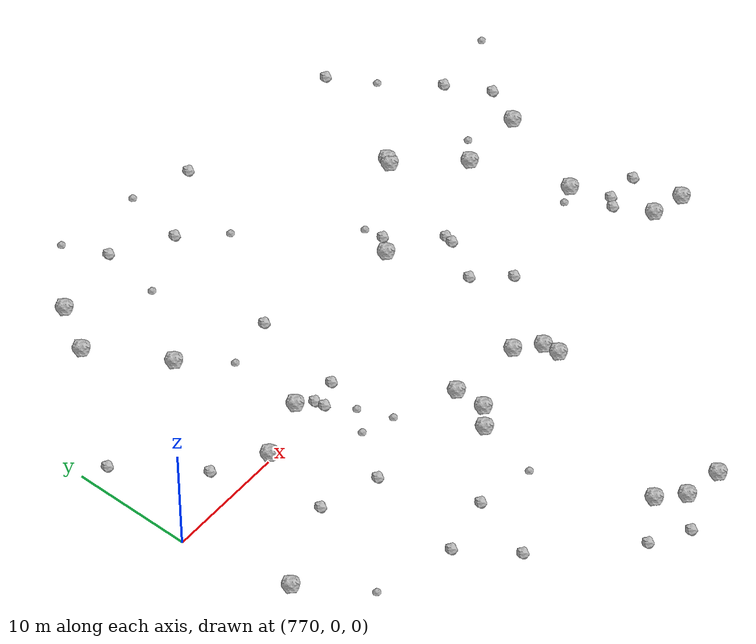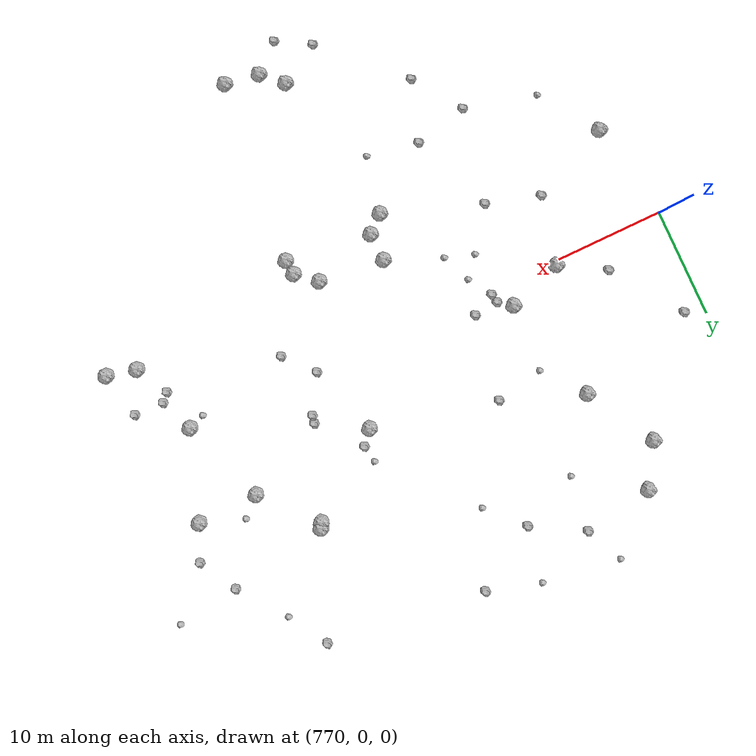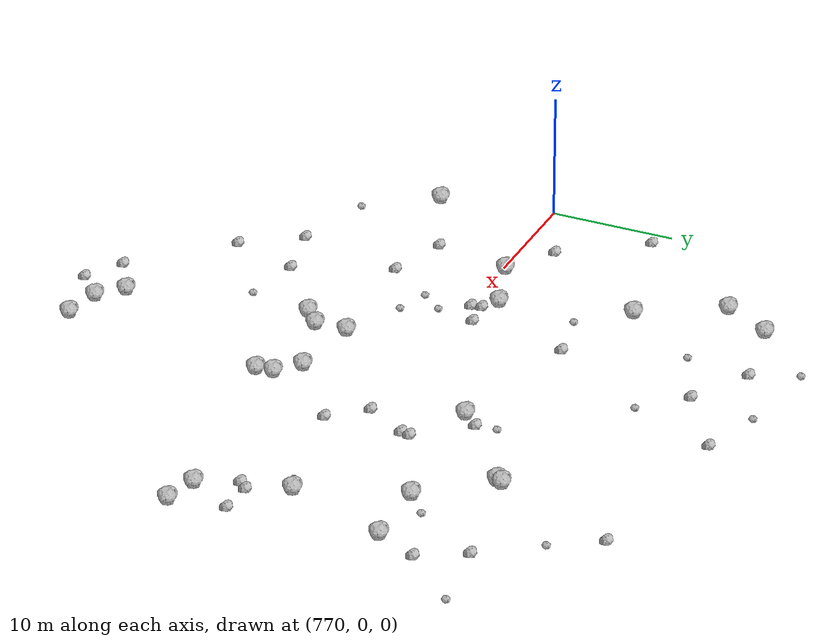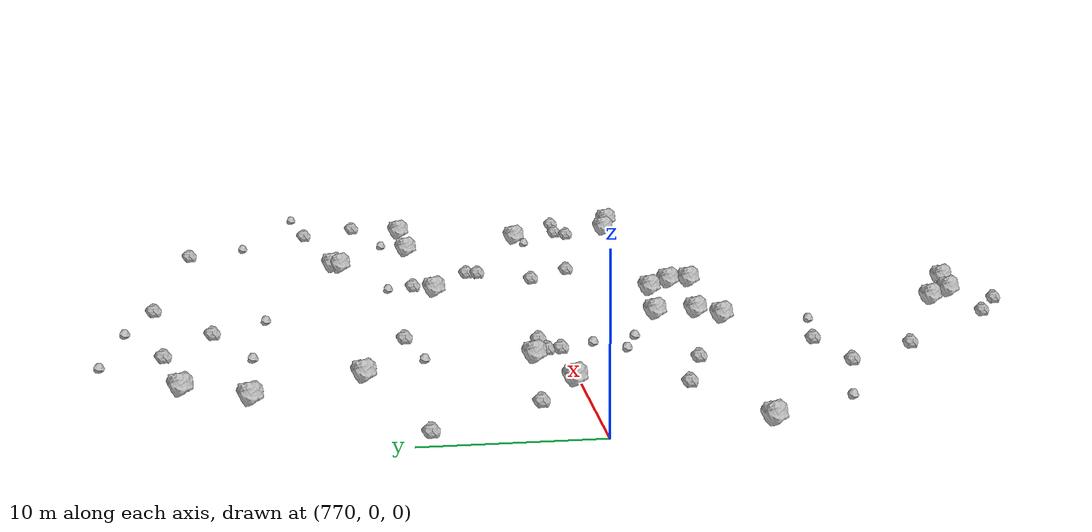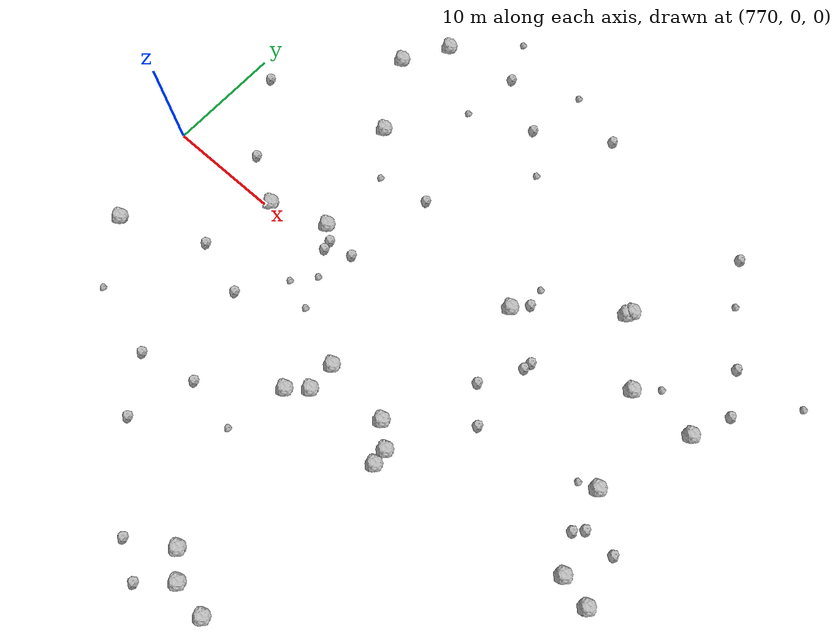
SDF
<sdf version="1.6">
 <world name="default">
  <include><uri>model://sun</uri></include>
  <model name="rock1_20_4">
   <include><uri>model://rock1</uri><pose>800.3407049680459 -7.444759703893087 0.5 0 0 0</pose></include>
  </model>
  <model name="rock1_20_5">
   <include><uri>model://rock1</uri><pose>794.3697582855712 -9.29956372597967 0.5 0 0 0</pose></include>
  </model>
  <model name="rock1_20_6">
   <include><uri>model://rock1</uri><pose>813.6630072474744 7.43321457174185 0.5 0 0 0</pose></include>
  </model>
  <model name="rock1_20_7">
   <include><uri>model://rock1</uri><pose>802.1448987721079 -9.008786224431905 0.5 0 0 0</pose></include>
  </model>
  <model name="rock1_20_8">
   <include><uri>model://rock1</uri><pose>785.5078910606471 1.9548187578022684 0.5 0 0 0</pose></include>
  </model>
  <model name="rock1_20_9">
   <include><uri>model://rock1</uri><pose>821.2524121114149 -7.915354016696753 0.5 0 0 0</pose></include>
  </model>
  <model name="rock1_20_10">
   <include><uri>model://rock1</uri><pose>819.3499573372492 7.568814123578306 0.5 0 0 0</pose></include>
  </model>
  <model name="rock1_20_11">
   <include><uri>model://rock1</uri><pose>795.4660265825607 -24.785799290277186 0.5 0 0 0</pose></include>
  </model>
  <model name="rock1_20_12">
   <include><uri>model://rock1</uri><pose>818.5140478193811 -7.268843887523101 0.5 0 0 0</pose></include>
  </model>
  <model name="rock1_20_13">
   <include><uri>model://rock1</uri><pose>801.9117179708768 6.416220344067199 0.5 0 0 0</pose></include>
  </model>
  <model name="rock1_20_14">
   <include><uri>model://rock1</uri><pose>802.2623138661072 -10.392764292887772 0.5 0 0 0</pose></include>
  </model>
  <model name="rock1_20_15">
   <include><uri>model://rock1</uri><pose>794.3110029679988 -6.725459280389224 0.5 0 0 0</pose></include>
  </model>
  <model name="rock1_20_16">
   <include><uri>model://rock1</uri><pose>800.4282747635991 -27.035629159734757 0.5 0 0 0</pose></include>
  </model>
  <model name="rock1_20_17">
   <include><uri>model://rock1</uri><pose>792.829213495724 -10.6332930584508 0.5 0 0 0</pose></include>
  </model>
  <model name="rock1_20_18">
   <include><uri>model://rock1</uri><pose>779.3485460290041 18.23160046500253 0.5 0 0 0</pose></include>
  </model>
  <model name="rock1_20_19">
   <include><uri>model://rock1</uri><pose>809.6647023728904 12.632051553303938 0.5 0 0 0</pose></include>
  </model>
  <model name="rock1_20_20">
   <include><uri>model://rock1</uri><pose>780.4939180979455 0.3064268356870201 0.5 0 0 0</pose></include>
  </model>
  <model name="rock1_20_21">
   <include><uri>model://rock1</uri><pose>816.4474211960501 -0.4870780245957498 0.5 0 0 0</pose></include>
  </model>
  <model name="rock1_20_22">
   <include><uri>model://rock1</uri><pose>771.8597132351351 -9.028354133061192 0.5 0 0 0</pose></include>
  </model>
  <model name="rock1_20_23">
   <include><uri>model://rock1</uri><pose>809.423035538666 12.18727295145721 0.5 0 0 0</pose></include>
  </model>
  <model name="rock1_20_24">
   <include><uri>model://rock1</uri><pose>797.2828987165524 -26.521264551689526 0.5 0 0 0</pose></include>
  </model>
  <model name="rock1_20_25">
   <include><uri>model://rock1</uri><pose>782.9241963105454 11.919057403305857 0.5 0 0 0</pose></include>
  </model>
  <model name="rock1_20_26">
   <include><uri>model://rock1</uri><pose>781.6683545678528 22.033035730578874 0.5 0 0 0</pose></include>
  </model>
  <model name="rock2_20_0">
   <include><uri>model://rock2</uri><pose>806.3034451921613 -2.8113890083001216 0.3 0 0 0</pose></include>
  </model>
  <model name="rock2_20_1">
   <include><uri>model://rock2</uri><pose>806.1870868535499 3.918425173339365 0.3 0 0 0</pose></include>
  </model>
  <model name="rock2_20_2">
   <include><uri>model://rock2</uri><pose>776.3576217110681 2.7367647752174094 0.3 0 0 0</pose></include>
  </model>
  <model name="rock2_20_3">
   <include><uri>model://rock2</uri><pose>817.6891144165446 -3.5617649923790644 0.3 0 0 0</pose></include>
  </model>
  <model name="rock2_20_4">
   <include><uri>model://rock2</uri><pose>804.0096112009945 -0.15931668513461972 0.3 0 0 0</pose></include>
  </model>
  <model name="rock2_20_5">
   <include><uri>model://rock2</uri><pose>788.0552690699152 23.181687371563022 0.3 0 0 0</pose></include>
  </model>
  <model name="rock2_20_6">
   <include><uri>model://rock2</uri><pose>798.7242571056235 24.135588308481516 0.3 0 0 0</pose></include>
  </model>
  <model name="rock2_20_7">
   <include><uri>model://rock2</uri><pose>802.9983424381326 7.708877427097619 0.3 0 0 0</pose></include>
  </model>
  <model name="rock2_20_8">
   <include><uri>model://rock2</uri><pose>783.8921946749889 -7.416564095185013 0.3 0 0 0</pose></include>
  </model>
  <model name="rock2_20_9">
   <include><uri>model://rock2</uri><pose>791.7551063317761 -26.969613722145233 0.3 0 0 0</pose></include>
  </model>
  <model name="rock2_20_10">
   <include><uri>model://rock2</uri><pose>778.9723218885935 -5.917100791535091 0.3 0 0 0</pose></include>
  </model>
  <model name="rock2_20_11">
   <include><uri>model://rock2</uri><pose>786.6695893517708 1.058000129524821 0.3 0 0 0</pose></include>
  </model>
  <model name="rock2_20_12">
   <include><uri>model://rock2</uri><pose>816.9796077764285 -4.293580872857007 0.3 0 0 0</pose></include>
  </model>
  <model name="rock2_20_13">
   <include><uri>model://rock2</uri><pose>820.8299407024105 10.859477352973059 0.3 0 0 0</pose></include>
  </model>
  <model name="rock2_20_14">
   <include><uri>model://rock2</uri><pose>771.8325876897918 9.046008267229041 0.3 0 0 0</pose></include>
  </model>
  <model name="rock2_20_15">
   <include><uri>model://rock2</uri><pose>785.0853975393833 -20.369623995050723 0.3 0 0 0</pose></include>
  </model>
  <model name="rock2_20_16">
   <include><uri>model://rock2</uri><pose>782.027459471732 -16.006037391690192 0.3 0 0 0</pose></include>
  </model>
  <model name="rock2_20_17">
   <include><uri>model://rock2</uri><pose>794.7774645497776 -28.71742778064149 0.3 0 0 0</pose></include>
  </model>
  <model name="rock2_20_18">
   <include><uri>model://rock2</uri><pose>813.5659139133749 22.29129477122101 0.3 0 0 0</pose></include>
  </model>
  <model name="rock2_20_19">
   <include><uri>model://rock2</uri><pose>786.9019238970933 -14.92039991028445 0.3 0 0 0</pose></include>
  </model>
  <model name="rock2_20_20">
   <include><uri>model://rock2</uri><pose>818.9241419547744 14.350948953269828 0.3 0 0 0</pose></include>
  </model>
  <model name="rock2_20_21">
   <include><uri>model://rock2</uri><pose>790.2802139185221 9.138441026421937 0.3 0 0 0</pose></include>
  </model>
  <model name="rock2_20_22">
   <include><uri>model://rock2</uri><pose>820.4406859835358 -3.6632088694390745 0.3 0 0 0</pose></include>
  </model>
  <model name="rock2_20_23">
   <include><uri>model://rock2</uri><pose>786.8221742997737 0.22638912942913336 0.3 0 0 0</pose></include>
  </model>
  <model name="rock2_20_24">
   <include><uri>model://rock2</uri><pose>792.7885547661159 20.44980129141726 0.3 0 0 0</pose></include>
  </model>
  <model name="rock2_20_25">
   <include><uri>model://rock2</uri><pose>788.9359243289315 1.2901856727941095 0.3 0 0 0</pose></include>
  </model>
  <model name="rock2_20_26">
   <include><uri>model://rock2</uri><pose>806.0398107206528 3.198784429063707 0.3 0 0 0</pose></include>
  </model>
  <model name="rock3_20_0">
   <include><uri>model://rock3</uri><pose>775.416015169335 -14.289499299345174 0.2 0 0 0</pose></include>
  </model>
  <model name="rock3_20_1">
   <include><uri>model://rock3</uri><pose>815.4086103243366 9.03039284023005 0.2 0 0 0</pose></include>
  </model>
  <model name="rock3_20_2">
   <include><uri>model://rock3</uri><pose>789.2429686266357 -4.601668428278675 0.2 0 0 0</pose></include>
  </model>
  <model name="rock3_20_3">
   <include><uri>model://rock3</uri><pose>802.7576678039217 9.302102240999965 0.2 0 0 0</pose></include>
  </model>
  <model name="rock3_20_4">
   <include><uri>model://rock3</uri><pose>824.794678045507 15.109856860700397 0.2 0 0 0</pose></include>
  </model>
  <model name="rock3_20_5">
   <include><uri>model://rock3</uri><pose>788.1357237583986 -1.9163190938445887 0.2 0 0 0</pose></include>
  </model>
  <model name="rock3_20_6">
   <include><uri>model://rock3</uri><pose>815.7050034701822 18.64542233021345 0.2 0 0 0</pose></include>
  </model>
  <model name="rock3_20_7">
   <include><uri>model://rock3</uri><pose>795.7843617799858 17.22544456335843 0.2 0 0 0</pose></include>
  </model>
  <model name="rock3_20_8">
   <include><uri>model://rock3</uri><pose>793.7475435701435 25.630770746725688 0.2 0 0 0</pose></include>
  </model>
  <model name="rock3_20_9">
   <include><uri>model://rock3</uri><pose>787.3401567304908 18.04400492390296 0.2 0 0 0</pose></include>
  </model>
  <model name="rock3_20_10">
   <include><uri>model://rock3</uri><pose>791.6443176220408 -15.850100150800426 0.2 0 0 0</pose></include>
  </model>
  <model name="rock3_20_11">
   <include><uri>model://rock3</uri><pose>814.9515185986367 -1.0535224012673226 0.2 0 0 0</pose></include>
  </model>
  <model name="rock3_20_12">
   <include><uri>model://rock3</uri><pose>786.5995857663925 -3.7051605022910366 0.2 0 0 0</pose></include>
  </model>
  <model name="rock3_20_13">
   <include><uri>model://rock3</uri><pose>786.4752306811594 26.68789648782775 0.2 0 0 0</pose></include>
  </model>
  <model name="rock3_20_14">
   <include><uri>model://rock3</uri><pose>785.8130602794614 8.251127071749963 0.2 0 0 0</pose></include>
  </model>
 </world>
</sdf>
